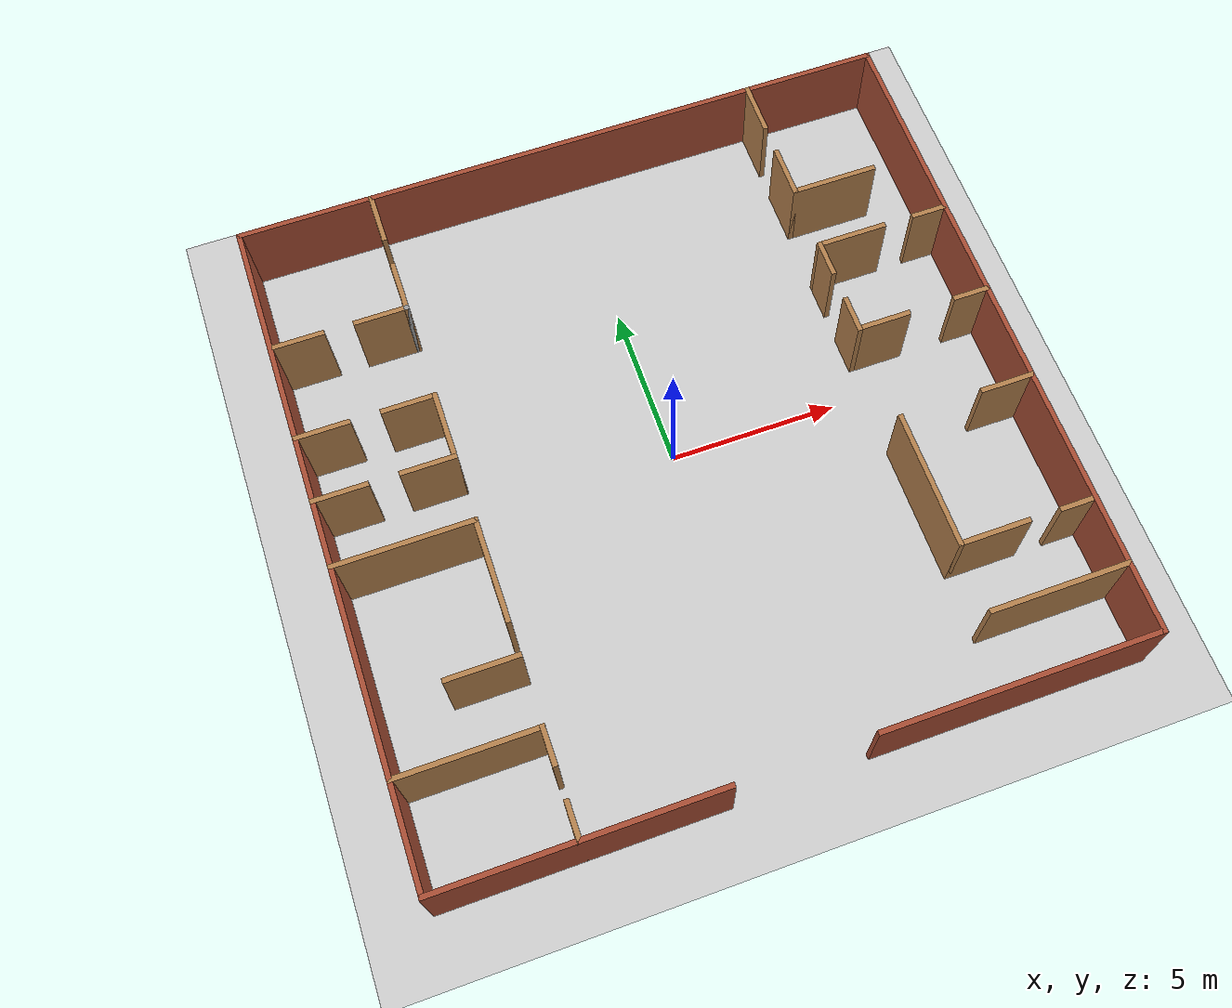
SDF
<sdf version="1.7">
 <world name="default">
  <light name="sun" type="directional">
   <pose>0 0 10 0 -0 0</pose>
   <diffuse>0.8 0.8 0.8 1</diffuse>
   <specular>0.2 0.2 0.2 1</specular>
   <attenuation>
    <range>1000</range>
    <constant>0.9</constant>
    <linear>0.01</linear>
    <quadratic>0.001</quadratic>
   </attenuation>
   <direction>-0.5 0.1 -0.9</direction>
   <spot><inner_angle>0</inner_angle><outer_angle>0</outer_angle><falloff>0</falloff></spot>
  </light>
  <model name="ground_plane">
   <static>1</static>
   <link name="link">
    <collision name="collision">
     <geometry><plane><normal>0 0 1</normal><size>100 100</size></plane></geometry>
     <surface>
      <contact><collide_bitmask>65535</collide_bitmask></contact>
      <friction><ode><mu>100</mu><mu2>50</mu2></ode></friction>
     </surface>
    </collision>
    <visual name="visual">
     <cast_shadows>0</cast_shadows>
     <geometry><plane><normal>0 0 1</normal><size>100 100</size></plane></geometry>
     <material>
      <script><uri>file://media/materials/scripts/gazebo.material</uri><name>Gazebo/Grey</name></script>
     </material>
    </visual>
   </link>
  </model>
  <gravity>0 0 -9.8</gravity>
  <magnetic_field>6e-06 2.3e-05 -4.2e-05</magnetic_field>
  <atmosphere type="adiabatic"/>
  <physics type="ode">
   <max_step_size>0.001</max_step_size>
   <real_time_factor>1</real_time_factor>
   <real_time_update_rate>1000</real_time_update_rate>
  </physics>
  <scene><ambient>0.4 0.4 0.4 1</ambient><background>0.7 0.7 0.7 1</background><shadows>1</shadows></scene>
  <spherical_coordinates>
   <surface_model>EARTH_WGS84</surface_model>
   <latitude_deg>0</latitude_deg>
   <longitude_deg>0</longitude_deg>
   <elevation>0</elevation>
   <heading_deg>0</heading_deg>
  </spherical_coordinates>
  <model name="Koundinya_base">
   <link name="Wall_0">
    <collision name="Wall_0_Collision">
     <geometry><box><size>20.15 0.15 2.5</size></box></geometry>
     <pose>0 0 1.25 0 -0 0</pose>
    </collision>
    <visual name="Wall_0_Visual">
     <pose>0 0 1.25 0 -0 0</pose>
     <geometry><box><size>20.15 0.15 2.5</size></box></geometry>
     <material>
      <script><uri>file://media/materials/scripts/gazebo.material</uri><name>Gazebo/Bricks</name></script>
      <ambient>1 1 1 1</ambient>
     </material>
     <meta><layer>0</layer></meta>
    </visual>
    <pose>0 10 0 0 -0 0</pose>
   </link>
   <link name="Wall_11">
    <collision name="Wall_11_Collision">
     <geometry><box><size>0.15 0.15 2.5</size></box></geometry>
     <pose>0 0 1.25 0 -0 0</pose>
    </collision>
    <visual name="Wall_11_Visual">
     <pose>0 0 1.25 0 -0 0</pose>
     <geometry><box><size>0.15 0.15 2.5</size></box></geometry>
     <material>
      <script><uri>file://media/materials/scripts/gazebo.material</uri><name>Gazebo/Grey</name></script>
      <ambient>1 1 1 1</ambient>
     </material>
     <meta><layer>0</layer></meta>
    </visual>
    <pose>-6 6 0 0 -0 0</pose>
   </link>
   <link name="Wall_13">
    <collision name="Wall_13_Collision">
     <geometry><box><size>1.65 0.15 2.5</size></box></geometry>
     <pose>0 0 1.25 0 -0 0</pose>
    </collision>
    <visual name="Wall_13_Visual">
     <pose>0 0 1.25 0 -0 0</pose>
     <geometry><box><size>1.65 0.15 2.5</size></box></geometry>
     <material>
      <script><uri>file://media/materials/scripts/gazebo.material</uri><name>Gazebo/Wood</name></script>
      <ambient>1 1 1 1</ambient>
     </material>
     <meta><layer>0</layer></meta>
    </visual>
    <pose>-6 9.25 0 0 -0 -1.5708</pose>
   </link>
   <link name="Wall_15">
    <collision name="Wall_15_Collision">
     <geometry><box><size>1.65 0.15 2.5</size></box></geometry>
     <pose>0 0 1.25 0 -0 0</pose>
    </collision>
    <visual name="Wall_15_Visual">
     <pose>0 0 1.25 0 -0 0</pose>
     <geometry><box><size>1.65 0.15 2.5</size></box></geometry>
     <material>
      <script><uri>file://media/materials/scripts/gazebo.material</uri><name>Gazebo/Wood</name></script>
      <ambient>1 1 1 1</ambient>
     </material>
     <meta><layer>0</layer></meta>
    </visual>
    <pose>-9.25 6 0 0 -0 0</pose>
   </link>
   <link name="Wall_17">
    <collision name="Wall_17_Collision">
     <geometry><box><size>1.65 0.15 2.5</size></box></geometry>
     <pose>0 0 1.25 0 -0 0</pose>
    </collision>
    <visual name="Wall_17_Visual">
     <pose>0 0 1.25 0 -0 0</pose>
     <geometry><box><size>1.65 0.15 2.5</size></box></geometry>
     <material>
      <script><uri>file://media/materials/scripts/gazebo.material</uri><name>Gazebo/Wood</name></script>
      <ambient>1 1 1 1</ambient>
     </material>
     <meta><layer>0</layer></meta>
    </visual>
    <pose>-6.75 6 0 0 -0 0</pose>
   </link>
   <link name="Wall_19">
    <collision name="Wall_19_Collision">
     <geometry><box><size>1.65 0.15 2.5</size></box></geometry>
     <pose>0 0 1.25 0 -0 0</pose>
    </collision>
    <visual name="Wall_19_Visual">
     <pose>0 0 1.25 0 -0 0</pose>
     <geometry><box><size>1.65 0.15 2.5</size></box></geometry>
     <material>
      <script><uri>file://media/materials/scripts/gazebo.material</uri><name>Gazebo/Wood</name></script>
      <ambient>1 1 1 1</ambient>
     </material>
     <meta><layer>0</layer></meta>
    </visual>
    <pose>-6 6.75 0 0 -0 -1.5708</pose>
   </link>
   <link name="Wall_2">
    <collision name="Wall_2_Collision">
     <geometry><box><size>20.15 0.15 2.5</size></box></geometry>
     <pose>0 0 1.25 0 -0 0</pose>
    </collision>
    <visual name="Wall_2_Visual">
     <pose>0 0 1.25 0 -0 0</pose>
     <geometry><box><size>20.15 0.15 2.5</size></box></geometry>
     <material>
      <script><uri>file://media/materials/scripts/gazebo.material</uri><name>Gazebo/Bricks</name></script>
      <ambient>1 1 1 1</ambient>
     </material>
     <meta><layer>0</layer></meta>
    </visual>
    <pose>-10 0 0 0 -0 -1.5708</pose>
   </link>
   <link name="Wall_21">
    <collision name="Wall_21_Collision">
     <geometry><box><size>1.65 0.15 2.5</size></box></geometry>
     <pose>0 0 1.25 0 -0 0</pose>
    </collision>
    <visual name="Wall_21_Visual">
     <pose>0 0 1.25 0 -0 0</pose>
     <geometry><box><size>1.65 0.15 2.5</size></box></geometry>
     <material>
      <script><uri>file://media/materials/scripts/gazebo.material</uri><name>Gazebo/Wood</name></script>
      <ambient>1 1 1 1</ambient>
     </material>
     <meta><layer>0</layer></meta>
    </visual>
    <pose>-9.25 3 0 0 -0 0</pose>
   </link>
   <link name="Wall_23">
    <collision name="Wall_23_Collision">
     <geometry><box><size>1.65 0.15 2.5</size></box></geometry>
     <pose>0 0 1.25 0 -0 0</pose>
    </collision>
    <visual name="Wall_23_Visual">
     <pose>0 0 1.25 0 -0 0</pose>
     <geometry><box><size>1.65 0.15 2.5</size></box></geometry>
     <material>
      <script><uri>file://media/materials/scripts/gazebo.material</uri><name>Gazebo/Wood</name></script>
      <ambient>1 1 1 1</ambient>
     </material>
     <meta><layer>0</layer></meta>
    </visual>
    <pose>-9.25 1 0 0 -0 0</pose>
   </link>
   <link name="Wall_25">
    <collision name="Wall_25_Collision">
     <geometry><box><size>1.65 0.15 2.5</size></box></geometry>
     <pose>0 0 1.25 0 -0 0</pose>
    </collision>
    <visual name="Wall_25_Visual">
     <pose>0 0 1.25 0 -0 0</pose>
     <geometry><box><size>1.65 0.15 2.5</size></box></geometry>
     <material>
      <script><uri>file://media/materials/scripts/gazebo.material</uri><name>Gazebo/Wood</name></script>
      <ambient>1 1 1 1</ambient>
     </material>
     <meta><layer>0</layer></meta>
    </visual>
    <pose>-6.75 1 0 0 -0 0</pose>
   </link>
   <link name="Wall_27">
    <collision name="Wall_27_Collision">
     <geometry><box><size>2.15 0.15 2.5</size></box></geometry>
     <pose>0 0 1.25 0 -0 0</pose>
    </collision>
    <visual name="Wall_27_Visual">
     <pose>0 0 1.25 0 -0 0</pose>
     <geometry><box><size>2.15 0.15 2.5</size></box></geometry>
     <material>
      <script><uri>file://media/materials/scripts/gazebo.material</uri><name>Gazebo/Wood</name></script>
      <ambient>1 1 1 1</ambient>
     </material>
     <meta><layer>0</layer></meta>
    </visual>
    <pose>-6 2 0 0 -0 -1.5708</pose>
   </link>
   <link name="Wall_29">
    <collision name="Wall_29_Collision">
     <geometry><box><size>1.65 0.15 2.5</size></box></geometry>
     <pose>0 0 1.25 0 -0 0</pose>
    </collision>
    <visual name="Wall_29_Visual">
     <pose>0 0 1.25 0 -0 0</pose>
     <geometry><box><size>1.65 0.15 2.5</size></box></geometry>
     <material>
      <script><uri>file://media/materials/scripts/gazebo.material</uri><name>Gazebo/Wood</name></script>
      <ambient>1 1 1 1</ambient>
     </material>
     <meta><layer>0</layer></meta>
    </visual>
    <pose>-6.75 3 0 0 -0 0</pose>
   </link>
   <link name="Wall_31">
    <collision name="Wall_31_Collision">
     <geometry><box><size>4.15 0.15 2.5</size></box></geometry>
     <pose>0 0 1.25 0 -0 0</pose>
    </collision>
    <visual name="Wall_31_Visual">
     <pose>0 0 1.25 0 -0 0</pose>
     <geometry><box><size>4.15 0.15 2.5</size></box></geometry>
     <material>
      <script><uri>file://media/materials/scripts/gazebo.material</uri><name>Gazebo/Wood</name></script>
      <ambient>1 1 1 1</ambient>
     </material>
     <meta><layer>0</layer></meta>
    </visual>
    <pose>-8 -1 0 0 -0 0</pose>
   </link>
   <link name="Wall_34">
    <collision name="Wall_34_Collision">
     <geometry><box><size>3.15 0.15 2.5</size></box></geometry>
     <pose>0 0 1.25 0 -0 0</pose>
    </collision>
    <visual name="Wall_34_Visual">
     <pose>0 0 1.25 0 -0 0</pose>
     <geometry><box><size>3.15 0.15 2.5</size></box></geometry>
     <material>
      <script><uri>file://media/materials/scripts/gazebo.material</uri><name>Gazebo/Wood</name></script>
      <ambient>1 1 1 1</ambient>
     </material>
     <meta><layer>0</layer></meta>
    </visual>
    <pose>-6 -2.5 0 0 -0 -1.5708</pose>
   </link>
   <link name="Wall_36">
    <collision name="Wall_36_Collision">
     <geometry><box><size>2.15 0.15 2.5</size></box></geometry>
     <pose>0 0 1.25 0 -0 0</pose>
    </collision>
    <visual name="Wall_36_Visual">
     <pose>0 0 1.25 0 -0 0</pose>
     <geometry><box><size>2.15 0.15 2.5</size></box></geometry>
     <material>
      <script><uri>file://media/materials/scripts/gazebo.material</uri><name>Gazebo/Wood</name></script>
      <ambient>1 1 1 1</ambient>
     </material>
     <meta><layer>0</layer></meta>
    </visual>
    <pose>-7 -5 0 0 -0 0</pose>
   </link>
   <link name="Wall_38">
    <collision name="Wall_38_Collision">
     <geometry><box><size>4.15 0.15 2.5</size></box></geometry>
     <pose>0 0 1.25 0 -0 0</pose>
    </collision>
    <visual name="Wall_38_Visual">
     <pose>0 0 1.25 0 -0 0</pose>
     <geometry><box><size>4.15 0.15 2.5</size></box></geometry>
     <material>
      <script><uri>file://media/materials/scripts/gazebo.material</uri><name>Gazebo/Wood</name></script>
      <ambient>1 1 1 1</ambient>
     </material>
     <meta><layer>0</layer></meta>
    </visual>
    <pose>-8 -7 0 0 -0 0</pose>
   </link>
   <link name="Wall_4">
    <collision name="Wall_4_Collision">
     <geometry><box><size>20.15 0.15 2.5</size></box></geometry>
     <pose>0 0 1.25 0 -0 0</pose>
    </collision>
    <visual name="Wall_4_Visual">
     <pose>0 0 1.25 0 -0 0</pose>
     <geometry><box><size>20.15 0.15 2.5</size></box></geometry>
     <material>
      <script><uri>file://media/materials/scripts/gazebo.material</uri><name>Gazebo/Bricks</name></script>
      <ambient>1 1 1 1</ambient>
     </material>
     <meta><layer>0</layer></meta>
    </visual>
    <pose>10 0 0 0 -0 -1.5708</pose>
   </link>
   <link name="Wall_40">
    <collision name="Wall_40_Collision">
     <geometry><box><size>1.15 0.15 2.5</size></box></geometry>
     <pose>0 0 1.25 0 -0 0</pose>
    </collision>
    <visual name="Wall_40_Visual">
     <pose>0 0 1.25 0 -0 0</pose>
     <geometry><box><size>1.15 0.15 2.5</size></box></geometry>
     <material>
      <script><uri>file://media/materials/scripts/gazebo.material</uri><name>Gazebo/Wood</name></script>
      <ambient>1 1 1 1</ambient>
     </material>
     <meta><layer>0</layer></meta>
    </visual>
    <pose>-6 -7.5 0 0 -0 -1.5708</pose>
   </link>
   <link name="Wall_42">
    <collision name="Wall_42_Collision">
     <geometry><box><size>1.15 0.15 2.5</size></box></geometry>
     <pose>0 0 1.25 0 -0 0</pose>
    </collision>
    <visual name="Wall_42_Visual">
     <pose>0 0 1.25 0 -0 0</pose>
     <geometry><box><size>1.15 0.15 2.5</size></box></geometry>
     <material>
      <script><uri>file://media/materials/scripts/gazebo.material</uri><name>Gazebo/Wood</name></script>
      <ambient>1 1 1 1</ambient>
     </material>
     <meta><layer>0</layer></meta>
    </visual>
    <pose>-6 -9.5 0 0 -0 -1.5708</pose>
   </link>
   <link name="Wall_44">
    <collision name="Wall_44_Collision">
     <geometry><box><size>1.65 0.15 2.5</size></box></geometry>
     <pose>0 0 1.25 0 -0 0</pose>
    </collision>
    <visual name="Wall_44_Visual">
     <pose>0 0 1.25 0 -0 0</pose>
     <geometry><box><size>1.65 0.15 2.5</size></box></geometry>
     <material>
      <script><uri>file://media/materials/scripts/gazebo.material</uri><name>Gazebo/Wood</name></script>
      <ambient>1 1 1 1</ambient>
     </material>
     <meta><layer>0</layer></meta>
    </visual>
    <pose>6 9.25 0 0 -0 -1.5708</pose>
   </link>
   <link name="Wall_46">
    <collision name="Wall_46_Collision">
     <geometry><box><size>1.65 0.15 2.5</size></box></geometry>
     <pose>0 0 1.25 0 -0 0</pose>
    </collision>
    <visual name="Wall_46_Visual">
     <pose>0 0 1.25 0 -0 0</pose>
     <geometry><box><size>1.65 0.15 2.5</size></box></geometry>
     <material>
      <script><uri>file://media/materials/scripts/gazebo.material</uri><name>Gazebo/Wood</name></script>
      <ambient>1 1 1 1</ambient>
     </material>
     <meta><layer>0</layer></meta>
    </visual>
    <pose>6 6.75 0 0 -0 -1.5708</pose>
   </link>
   <link name="Wall_49">
    <collision name="Wall_49_Collision">
     <geometry><box><size>2.65 0.15 2.5</size></box></geometry>
     <pose>0 0 1.25 0 -0 0</pose>
    </collision>
    <visual name="Wall_49_Visual">
     <pose>0 0 1.25 0 -0 0</pose>
     <geometry><box><size>2.65 0.15 2.5</size></box></geometry>
     <material>
      <script><uri>file://media/materials/scripts/gazebo.material</uri><name>Gazebo/Wood</name></script>
      <ambient>1 1 1 1</ambient>
     </material>
     <meta><layer>0</layer></meta>
    </visual>
    <pose>7.25 6 0 0 -0 0</pose>
   </link>
   <link name="Wall_51">
    <collision name="Wall_51_Collision">
     <geometry><box><size>2.15 0.15 2.5</size></box></geometry>
     <pose>0 0 1.25 0 -0 0</pose>
    </collision>
    <visual name="Wall_51_Visual">
     <pose>0 0 1.25 0 -0 0</pose>
     <geometry><box><size>2.15 0.15 2.5</size></box></geometry>
     <material>
      <script><uri>file://media/materials/scripts/gazebo.material</uri><name>Gazebo/Wood</name></script>
      <ambient>1 1 1 1</ambient>
     </material>
     <meta><layer>0</layer></meta>
    </visual>
    <pose>7 4 0 0 -0 0</pose>
   </link>
   <link name="Wall_53">
    <collision name="Wall_53_Collision">
     <geometry><box><size>1.15 0.15 2.5</size></box></geometry>
     <pose>0 0 1.25 0 -0 0</pose>
    </collision>
    <visual name="Wall_53_Visual">
     <pose>0 0 1.25 0 -0 0</pose>
     <geometry><box><size>1.15 0.15 2.5</size></box></geometry>
     <material>
      <script><uri>file://media/materials/scripts/gazebo.material</uri><name>Gazebo/Wood</name></script>
      <ambient>1 1 1 1</ambient>
     </material>
     <meta><layer>0</layer></meta>
    </visual>
    <pose>9.5 4 0 0 -0 0</pose>
   </link>
   <link name="Wall_55">
    <collision name="Wall_55_Collision">
     <geometry><box><size>1.15 0.15 2.5</size></box></geometry>
     <pose>0 0 1.25 0 -0 0</pose>
    </collision>
    <visual name="Wall_55_Visual">
     <pose>0 0 1.25 0 -0 0</pose>
     <geometry><box><size>1.15 0.15 2.5</size></box></geometry>
     <material>
      <script><uri>file://media/materials/scripts/gazebo.material</uri><name>Gazebo/Wood</name></script>
      <ambient>1 1 1 1</ambient>
     </material>
     <meta><layer>0</layer></meta>
    </visual>
    <pose>9.5 1 0 0 -0 0</pose>
   </link>
   <link name="Wall_57">
    <collision name="Wall_57_Collision">
     <geometry><box><size>1.15 0.15 2.5</size></box></geometry>
     <pose>0 0 1.25 0 -0 0</pose>
    </collision>
    <visual name="Wall_57_Visual">
     <pose>0 0 1.25 0 -0 0</pose>
     <geometry><box><size>1.15 0.15 2.5</size></box></geometry>
     <material>
      <script><uri>file://media/materials/scripts/gazebo.material</uri><name>Gazebo/Wood</name></script>
      <ambient>1 1 1 1</ambient>
     </material>
     <meta><layer>0</layer></meta>
    </visual>
    <pose>6 3.5 0 0 -0 -1.5708</pose>
   </link>
   <link name="Wall_59">
    <collision name="Wall_59_Collision">
     <geometry><box><size>1.15 0.15 2.5</size></box></geometry>
     <pose>0 0 1.25 0 -0 0</pose>
    </collision>
    <visual name="Wall_59_Visual">
     <pose>0 0 1.25 0 -0 0</pose>
     <geometry><box><size>1.15 0.15 2.5</size></box></geometry>
     <material>
      <script><uri>file://media/materials/scripts/gazebo.material</uri><name>Gazebo/Wood</name></script>
      <ambient>1 1 1 1</ambient>
     </material>
     <meta><layer>0</layer></meta>
    </visual>
    <pose>6 1.5 0 0 -0 -1.5708</pose>
   </link>
   <link name="Wall_6">
    <collision name="Wall_6_Collision">
     <geometry><box><size>8.15 0.15 2.5</size></box></geometry>
     <pose>0 0 1.25 0 -0 0</pose>
    </collision>
    <visual name="Wall_6_Visual">
     <pose>0 0 1.25 0 -0 0</pose>
     <geometry><box><size>8.15 0.15 2.5</size></box></geometry>
     <material>
      <script><uri>file://media/materials/scripts/gazebo.material</uri><name>Gazebo/Bricks</name></script>
      <ambient>1 1 1 1</ambient>
     </material>
     <meta><layer>0</layer></meta>
    </visual>
    <pose>-6 -10 0 0 -0 0</pose>
   </link>
   <link name="Wall_61">
    <collision name="Wall_61_Collision">
     <geometry><box><size>1.65 0.15 2.5</size></box></geometry>
     <pose>0 0 1.25 0 -0 0</pose>
    </collision>
    <visual name="Wall_61_Visual">
     <pose>0 0 1.25 0 -0 0</pose>
     <geometry><box><size>1.65 0.15 2.5</size></box></geometry>
     <material>
      <script><uri>file://media/materials/scripts/gazebo.material</uri><name>Gazebo/Wood</name></script>
      <ambient>1 1 1 1</ambient>
     </material>
     <meta><layer>0</layer></meta>
    </visual>
    <pose>6.75 1 0 0 -0 0</pose>
   </link>
   <link name="Wall_63">
    <collision name="Wall_63_Collision">
     <geometry><box><size>1.65 0.15 2.5</size></box></geometry>
     <pose>0 0 1.25 0 -0 0</pose>
    </collision>
    <visual name="Wall_63_Visual">
     <pose>0 0 1.25 0 -0 0</pose>
     <geometry><box><size>1.65 0.15 2.5</size></box></geometry>
     <material>
      <script><uri>file://media/materials/scripts/gazebo.material</uri><name>Gazebo/Wood</name></script>
      <ambient>1 1 1 1</ambient>
     </material>
     <meta><layer>0</layer></meta>
    </visual>
    <pose>9.25 -2 0 0 -0 3.14159</pose>
   </link>
   <link name="Wall_65">
    <collision name="Wall_65_Collision">
     <geometry><box><size>1.15 0.15 2.5</size></box></geometry>
     <pose>0 0 1.25 0 -0 0</pose>
    </collision>
    <visual name="Wall_65_Visual">
     <pose>0 0 1.25 0 -0 0</pose>
     <geometry><box><size>1.15 0.15 2.5</size></box></geometry>
     <material>
      <script><uri>file://media/materials/scripts/gazebo.material</uri><name>Gazebo/Wood</name></script>
      <ambient>1 1 1 1</ambient>
     </material>
     <meta><layer>0</layer></meta>
    </visual>
    <pose>9.5 -6 0 0 -0 0</pose>
   </link>
   <link name="Wall_67">
    <collision name="Wall_67_Collision">
     <geometry><box><size>4.15 0.15 2.5</size></box></geometry>
     <pose>0 0 1.25 0 -0 0</pose>
    </collision>
    <visual name="Wall_67_Visual">
     <pose>0 0 1.25 0 -0 0</pose>
     <geometry><box><size>4.15 0.15 2.5</size></box></geometry>
     <material>
      <script><uri>file://media/materials/scripts/gazebo.material</uri><name>Gazebo/Wood</name></script>
      <ambient>1 1 1 1</ambient>
     </material>
     <meta><layer>0</layer></meta>
    </visual>
    <pose>8 -8 0 0 -0 0</pose>
   </link>
   <link name="Wall_69">
    <collision name="Wall_69_Collision">
     <geometry><box><size>2.15 0.15 2.5</size></box></geometry>
     <pose>0 0 1.25 0 -0 0</pose>
    </collision>
    <visual name="Wall_69_Visual">
     <pose>0 0 1.25 0 -0 0</pose>
     <geometry><box><size>2.15 0.15 2.5</size></box></geometry>
     <material>
      <script><uri>file://media/materials/scripts/gazebo.material</uri><name>Gazebo/Wood</name></script>
      <ambient>1 1 1 1</ambient>
     </material>
     <meta><layer>0</layer></meta>
    </visual>
    <pose>7 -6 0 0 -0 0</pose>
   </link>
   <link name="Wall_71">
    <collision name="Wall_71_Collision">
     <geometry><box><size>4.15 0.15 2.5</size></box></geometry>
     <pose>0 0 1.25 0 -0 0</pose>
    </collision>
    <visual name="Wall_71_Visual">
     <pose>0 0 1.25 0 -0 0</pose>
     <geometry><box><size>4.15 0.15 2.5</size></box></geometry>
     <material>
      <script><uri>file://media/materials/scripts/gazebo.material</uri><name>Gazebo/Wood</name></script>
      <ambient>1 1 1 1</ambient>
     </material>
     <meta><layer>0</layer></meta>
    </visual>
    <pose>6 -4 0 0 -0 -1.5708</pose>
   </link>
   <link name="Wall_8">
    <collision name="Wall_8_Collision">
     <geometry><box><size>8.15 0.15 2.5</size></box></geometry>
     <pose>0 0 1.25 0 -0 0</pose>
    </collision>
    <visual name="Wall_8_Visual">
     <pose>0 0 1.25 0 -0 0</pose>
     <geometry><box><size>8.15 0.15 2.5</size></box></geometry>
     <material>
      <script><uri>file://media/materials/scripts/gazebo.material</uri><name>Gazebo/Bricks</name></script>
      <ambient>1 1 1 1</ambient>
     </material>
     <meta><layer>0</layer></meta>
    </visual>
    <pose>6 -10 0 0 -0 0</pose>
   </link>
   <static>1</static>
  </model>
 </world>
</sdf>
